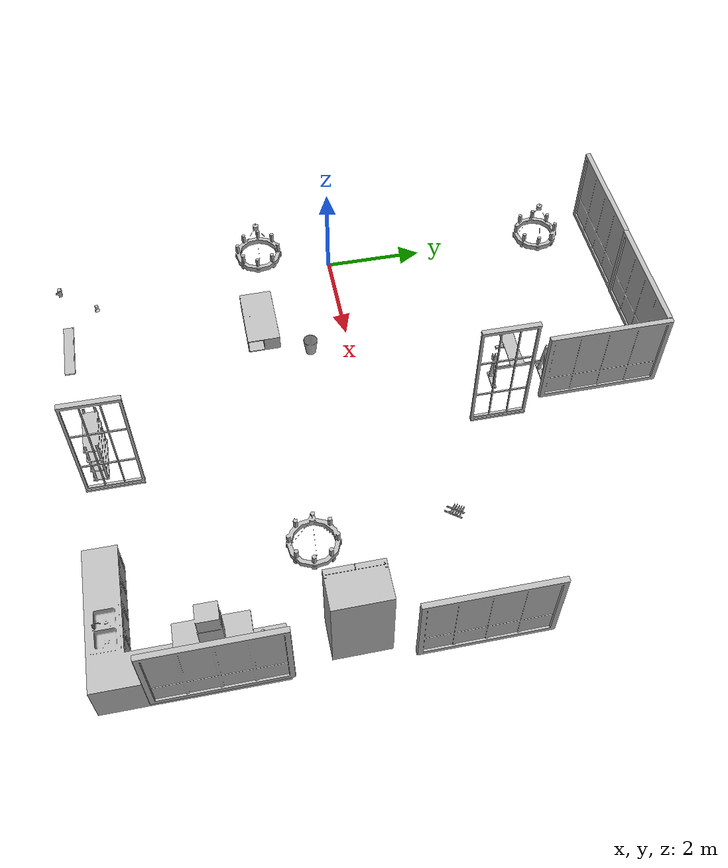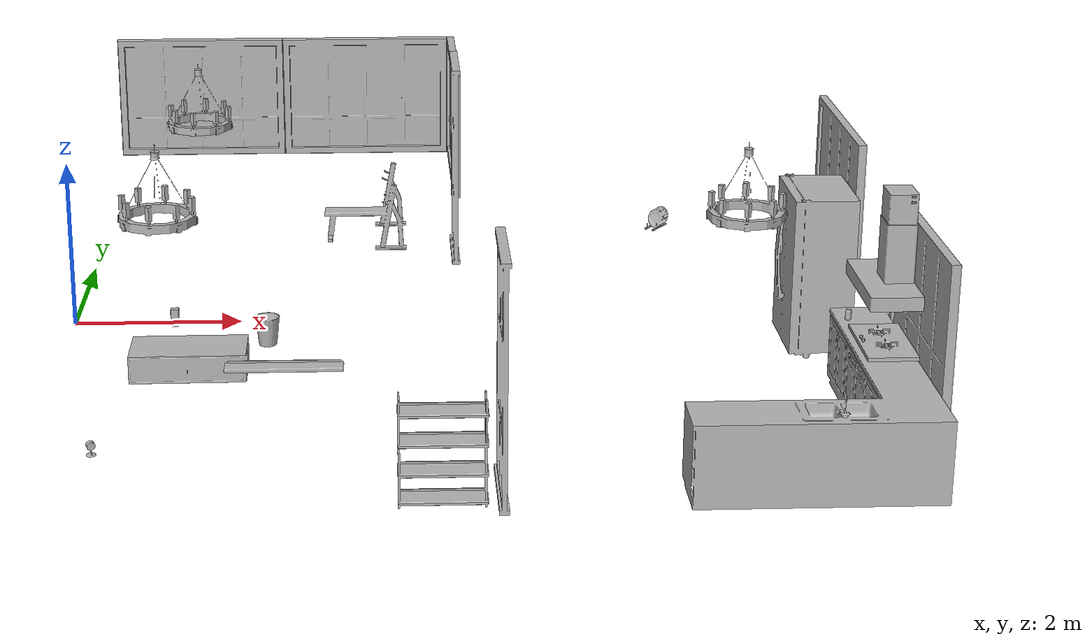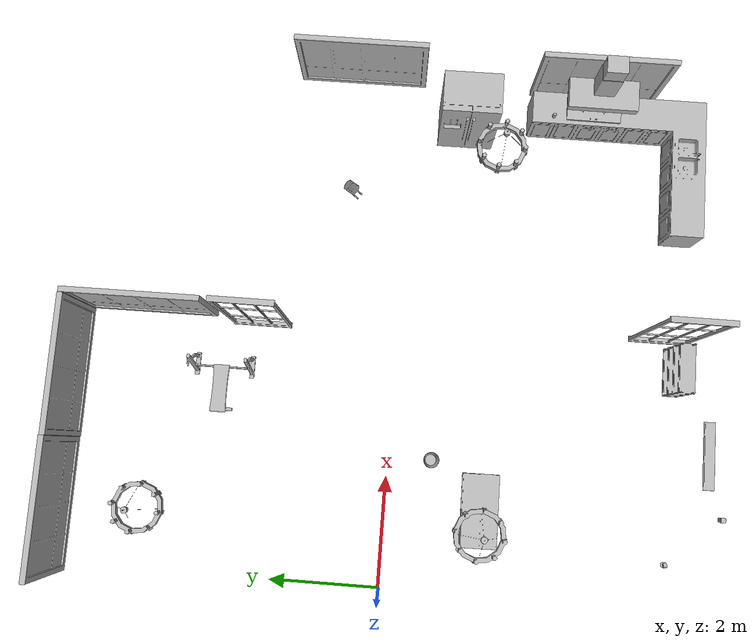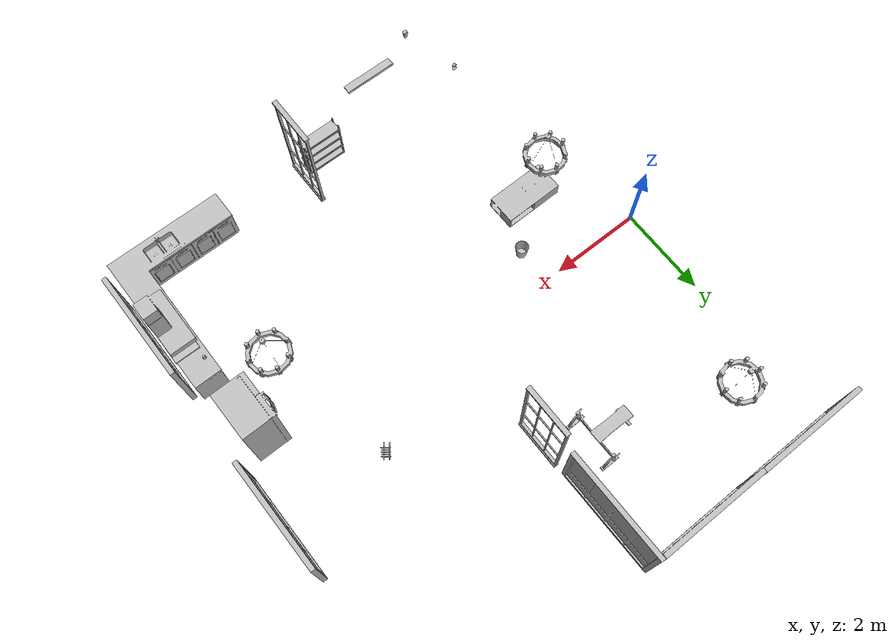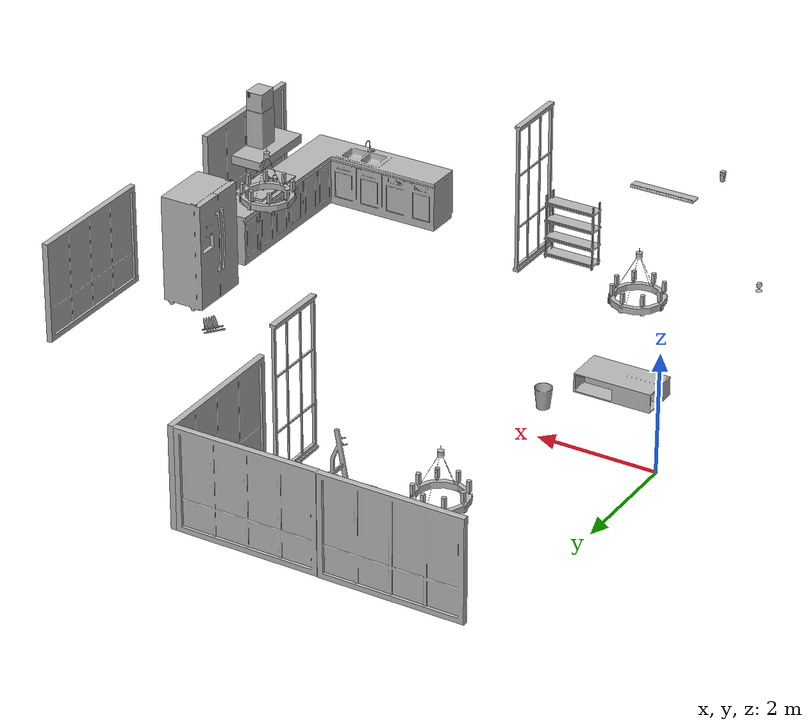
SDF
<sdf version="1.6">
 <world name="default">
  <model name="Board_01_001">
   <static>1</static>
   <link name="aws_robomaker_residential_Board_01::link">
    <inertial><mass>1</mass></inertial>
    <collision name="collision">
     <geometry>
      <mesh>
       <uri>model://aws_robomaker_residential_Board_01/meshes/aws_Board_01_collision.DAE</uri>
       <scale>1 1 1</scale>
      </mesh>
     </geometry>
    </collision>
    <visual name="visual">
     <geometry>
      <mesh><uri>model://aws_robomaker_residential_Board_01/meshes/aws_Board_01_visual.DAE</uri></mesh>
     </geometry>
     <meta><layer>2</layer></meta>
    </visual>
   </link>
   <static>1</static>
   <pose>2.77907 -5.3927 1.53817 0 -0 0</pose>
  </model>
  <model name="Chandelier_01_001">
   <static>1</static>
   <link name="aws_robomaker_residential_Chandelier_01::link">
    <inertial><mass>1</mass></inertial>
    <collision name="collision">
     <geometry>
      <mesh>
       <uri>model://aws_robomaker_residential_Chandelier_01/meshes/aws_Chandelier_01_collision.DAE</uri>
       <scale>1 1 1</scale>
      </mesh>
     </geometry>
    </collision>
    <visual name="visual">
     <geometry>
      <mesh><uri>model://aws_robomaker_residential_Chandelier_01/meshes/aws_Chandelier_01_visual.DAE</uri></mesh>
     </geometry>
     <meta><layer>2</layer></meta>
    </visual>
   </link>
   <static>1</static>
   <pose>1.22106 4.15574 1.295 0 -0 0</pose>
  </model>
  <model name="Chandelier_01_003">
   <static>1</static>
   <link name="aws_robomaker_residential_Chandelier_01::link">
    <inertial><mass>1</mass></inertial>
    <collision name="collision">
     <geometry>
      <mesh>
       <uri>model://aws_robomaker_residential_Chandelier_01/meshes/aws_Chandelier_01_collision.DAE</uri>
       <scale>1 1 1</scale>
      </mesh>
     </geometry>
    </collision>
    <visual name="visual">
     <geometry>
      <mesh><uri>model://aws_robomaker_residential_Chandelier_01/meshes/aws_Chandelier_01_visual.DAE</uri></mesh>
     </geometry>
     <meta><layer>2</layer></meta>
    </visual>
   </link>
   <static>1</static>
   <pose>7.82406 -1.59 1.751 0 -0 0</pose>
  </model>
  <model name="Chandelier_01_004">
   <static>1</static>
   <link name="aws_robomaker_residential_Chandelier_01::link">
    <inertial><mass>1</mass></inertial>
    <collision name="collision">
     <geometry>
      <mesh>
       <uri>model://aws_robomaker_residential_Chandelier_01/meshes/aws_Chandelier_01_collision.DAE</uri>
       <scale>1 1 1</scale>
      </mesh>
     </geometry>
    </collision>
    <visual name="visual">
     <geometry>
      <mesh><uri>model://aws_robomaker_residential_Chandelier_01/meshes/aws_Chandelier_01_visual.DAE</uri></mesh>
     </geometry>
     <meta><layer>2</layer></meta>
    </visual>
   </link>
   <static>1</static>
   <pose>1.22106 -1.59204 1.7873 0 -0 0</pose>
  </model>
  <model name="SecurityCamera_01_001">
   <static>1</static>
   <link name="aws_robomaker_residential_SecurityCamera_01::link">
    <inertial>
     <mass>1</mass>
     <inertia>
      <ixx>18.2222</ixx>
      <ixy>0</ixy>
      <ixz>0</ixz>
      <iyy>18.2222</iyy>
      <iyz>0</iyz>
      <izz>0.0018767</izz>
     </inertia>
    </inertial>
    <collision name="collision">
     <geometry>
      <mesh>
       <uri>model://aws_robomaker_residential_SecurityCamera_01/meshes/aws_SecurityCamera_01_collision.DAE</uri>
       <scale>1 1 1</scale>
      </mesh>
     </geometry>
    </collision>
    <visual name="visual">
     <geometry>
      <mesh>
       <uri>model://aws_robomaker_residential_SecurityCamera_01/meshes/aws_SecurityCamera_01_visual.DAE</uri>
      </mesh>
     </geometry>
     <meta><layer>2</layer></meta>
    </visual>
   </link>
   <pose>0.842134 -4.99629 0.495067 0 0 -2.84104</pose>
  </model>
  <model name="CoffeeTable_01_001">
   <static>1</static>
   <link name="aws_robomaker_residential_CoffeeTable_01::link">
    <inertial>
     <mass>21.7</mass>
     <inertia><ixx>0.81375</ixx><ixy>0</ixy><ixz>0</ixz><iyy>2.76675</iyy><iyz>0</iyz><izz>3.254</izz></inertia>
    </inertial>
    <collision name="collision">
     <geometry>
      <mesh>
       <uri>model://aws_robomaker_residential_CoffeeTable_01/meshes/aws_CoffeeTable_01_collision.DAE</uri>
       <scale>1 1 1</scale>
      </mesh>
     </geometry>
     <surface><contact><ode><max_vel>0.01</max_vel></ode></contact></surface>
    </collision>
    <visual name="visual">
     <geometry>
      <mesh><uri>model://aws_robomaker_residential_CoffeeTable_01/meshes/aws_CoffeeTable_01_visual.DAE</uri></mesh>
     </geometry>
     <meta><layer>1</layer></meta>
    </visual>
   </link>
   <static>1</static>
   <pose>1.5123 -1.73344 0.041983 0 -0 0.01</pose>
  </model>
  <model name="CookingBench_01_001">
   <link name="aws_robomaker_residential_CookingBench_01::link">
    <inertial><mass>1</mass></inertial>
    <collision name="collision">
     <geometry>
      <mesh>
       <uri>model://aws_robomaker_residential_CookingBench_01/meshes/aws_CookingBench_01_collision.DAE</uri>
       <scale>1 1 1</scale>
      </mesh>
     </geometry>
    </collision>
    <visual name="visual">
     <geometry>
      <mesh>
       <uri>model://aws_robomaker_residential_CookingBench_01/meshes/aws_CookingBench_01_visual.DAE</uri>
      </mesh>
     </geometry>
     <meta><layer>1</layer></meta>
    </visual>
   </link>
   <pose>9.03838 -3.35114 0.90361 0 -0 3.13713</pose>
   <static>1</static>
  </model>
  <model name="FitnessEquipment_01_001">
   <static>1</static>
   <link name="aws_robomaker_residential_FitnessEquipment_01::link">
    <inertial><mass>80</mass></inertial>
    <collision name="collision">
     <geometry>
      <mesh>
       <uri>model://aws_robomaker_residential_FitnessEquipment_01/meshes/aws_FitnessEquipment_01_collision.DAE</uri>
       <scale>1 1 1</scale>
      </mesh>
     </geometry>
    </collision>
    <visual name="visual">
     <geometry>
      <mesh>
       <uri>model://aws_robomaker_residential_FitnessEquipment_01/meshes/aws_FitnessEquipment_01_visual.DAE</uri>
      </mesh>
     </geometry>
     <meta><layer>1</layer></meta>
    </visual>
   </link>
   <static>1</static>
   <pose>3.48472 3.1691 0.003168 0 -0 0</pose>
  </model>
  <model name="FoldingDoor_02_001">
   <static>1</static>
   <link name="aws_robomaker_residential_FoldingDoor_02::link">
    <inertial><mass>1</mass></inertial>
    <collision name="collision">
     <geometry>
      <mesh>
       <uri>model://aws_robomaker_residential_FoldingDoor_02/meshes/aws_FoldingDoor_02_collision.DAE</uri>
       <scale>1 1 1</scale>
      </mesh>
     </geometry>
    </collision>
    <visual name="visual">
     <geometry>
      <mesh><uri>model://aws_robomaker_residential_FoldingDoor_02/meshes/aws_FoldingDoor_02_visual.DAE</uri></mesh>
     </geometry>
     <meta><layer>2</layer></meta>
    </visual>
   </link>
   <static>1</static>
   <pose>4.67423 2.46451 0 0 -0 3.14159</pose>
  </model>
  <model name="FoldingDoor_02_002">
   <static>1</static>
   <link name="aws_robomaker_residential_FoldingDoor_02::link">
    <inertial><mass>1</mass></inertial>
    <collision name="collision">
     <geometry>
      <mesh>
       <uri>model://aws_robomaker_residential_FoldingDoor_02/meshes/aws_FoldingDoor_02_collision.DAE</uri>
       <scale>1 1 1</scale>
      </mesh>
     </geometry>
    </collision>
    <visual name="visual">
     <geometry>
      <mesh><uri>model://aws_robomaker_residential_FoldingDoor_02/meshes/aws_FoldingDoor_02_visual.DAE</uri></mesh>
     </geometry>
     <meta><layer>2</layer></meta>
    </visual>
   </link>
   <static>1</static>
   <pose>4.8912 -4.84968 0 0 -0 0</pose>
  </model>
  <model name="KitchenCabinet_01_001">
   <static>1</static>
   <link name="aws_robomaker_residential_KitchenCabinet_01::link">
    <inertial><mass>1</mass></inertial>
    <collision name="collision">
     <geometry>
      <mesh>
       <uri>model://aws_robomaker_residential_KitchenCabinet_01/meshes/aws_KitchenCabinet_01_collision.DAE</uri>
       <scale>1 1 1</scale>
      </mesh>
     </geometry>
    </collision>
    <visual name="visual">
     <geometry>
      <mesh>
       <uri>model://aws_robomaker_residential_KitchenCabinet_01/meshes/aws_KitchenCabinet_01_visual.DAE</uri>
      </mesh>
     </geometry>
     <meta><layer>1</layer></meta>
    </visual>
   </link>
   <static>1</static>
   <pose>8.00201 -3.83651 0.012068 0 0 -3.14</pose>
  </model>
  <model name="LightC_01_001">
   <static>1</static>
   <link name="aws_robomaker_residential_LightC_01::link">
    <inertial><mass>1</mass></inertial>
    <collision name="collision">
     <geometry>
      <mesh>
       <uri>model://aws_robomaker_residential_LightC_01/meshes/aws_LightC_01_collision.DAE</uri>
       <scale>1 1 1</scale>
      </mesh>
     </geometry>
    </collision>
    <visual name="visual">
     <geometry>
      <mesh><uri>model://aws_robomaker_residential_LightC_01/meshes/aws_LightC_01_visual.DAE</uri></mesh>
     </geometry>
     <meta><layer>2</layer></meta>
    </visual>
   </link>
   <static>1</static>
   <pose>1.76957 -5.44437 2 0 -0 0</pose>
  </model>
  <model name="Rangehood_01_001">
   <static>1</static>
   <link name="aws_robomaker_residential_Rangehood_01::link">
    <inertial><mass>1</mass></inertial>
    <collision name="collision">
     <geometry>
      <mesh>
       <uri>model://aws_robomaker_residential_Rangehood_01/meshes/aws_Rangehood_01_collision.DAE</uri>
       <scale>1 1 1</scale>
      </mesh>
     </geometry>
    </collision>
    <visual name="visual">
     <geometry>
      <mesh><uri>model://aws_robomaker_residential_Rangehood_01/meshes/aws_Rangehood_01_visual.DAE</uri></mesh>
     </geometry>
     <meta><layer>2</layer></meta>
    </visual>
   </link>
   <static>1</static>
   <pose>9.01979 -3.36994 1.50761 0 -0 0</pose>
  </model>
  <model name="Refrigerator_01_001">
   <static>1</static>
   <link name="aws_robomaker_residential_Refrigerator_01::link">
    <inertial><mass>1</mass></inertial>
    <collision name="collision">
     <geometry>
      <mesh>
       <uri>model://aws_robomaker_residential_Refrigerator_01/meshes/aws_Refrigerator_01_collision.DAE</uri>
       <scale>1 1 1</scale>
      </mesh>
     </geometry>
    </collision>
    <visual name="visual">
     <geometry>
      <mesh>
       <uri>model://aws_robomaker_residential_Refrigerator_01/meshes/aws_Refrigerator_01_visual.DAE</uri>
      </mesh>
     </geometry>
     <meta><layer>1</layer></meta>
    </visual>
   </link>
   <static>1</static>
   <pose>8.70273 -1.03203 0 0 0 -1.5635</pose>
  </model>
  <model name="ShoeRack_01_001">
   <static>1</static>
   <link name="aws_robomaker_residential_ShoeRack_01::link">
    <inertial>
     <mass>6</mass>
     <inertia>
      <ixx>0.02</ixx>
      <ixy>0</ixy>
      <ixz>0</ixz>
      <iyy>0.04</iyy>
      <iyz>0</iyz>
      <ixx>0.02</ixx>
      <izz>1</izz>
     </inertia>
    </inertial>
    <collision name="collision">
     <geometry>
      <mesh>
       <uri>model://aws_robomaker_residential_ShoeRack_01/meshes/aws_ShoeRack_01_collision.DAE</uri>
       <scale>1 1 1</scale>
      </mesh>
     </geometry>
     <surface>
      <friction><ode><mu>0.2</mu><mu2>0.2</mu2></ode></friction>
      <contact><ode><kd>2500</kd></ode></contact>
     </surface>
    </collision>
    <visual name="visual">
     <geometry>
      <mesh><uri>model://aws_robomaker_residential_ShoeRack_01/meshes/aws_ShoeRack_01_visual.DAE</uri></mesh>
     </geometry>
     <meta><layer>1</layer></meta>
    </visual>
   </link>
   <pose>4.29798 -5.17357 0 0 -0 0</pose>
  </model>
  <model name="Tableware_01_001">
   <static>1</static>
   <link name="aws_robomaker_residential_Tableware_01::link">
    <inertial><mass>1</mass></inertial>
    <collision name="collision">
     <geometry>
      <mesh>
       <uri>model://aws_robomaker_residential_Tableware_01/meshes/aws_Tableware_01_collision.DAE</uri>
       <scale>1 1 1</scale>
      </mesh>
     </geometry>
    </collision>
    <visual name="visual">
     <geometry>
      <mesh><uri>model://aws_robomaker_residential_Tableware_01/meshes/aws_Tableware_01_visual.DAE</uri></mesh>
     </geometry>
     <meta><layer>1</layer></meta>
    </visual>
   </link>
   <pose>7.15317 0.982767 0.817812 -0.001238 -0.000976 1.02476</pose>
  </model>
  <model name="Trash_01_001">
   <static>1</static>
   <link name="aws_robomaker_residential_Trash_01::link">
    <inertial>
     <mass>0.1</mass>
     <inertia><ixy>0</ixy><ixz>0</ixz><iyz>0</iyz><ixx>0.05288</ixx><iyy>0.05288</iyy><izz>0.09132</izz></inertia>
    </inertial>
    <collision name="collision">
     <geometry>
      <mesh>
       <uri>model://aws_robomaker_residential_Trash_01/meshes/aws_Trash_01_collision.DAE</uri>
       <scale>1 1 1</scale>
      </mesh>
     </geometry>
    </collision>
    <visual name="visual">
     <geometry>
      <mesh><uri>model://aws_robomaker_residential_Trash_01/meshes/aws_Trash_01_visual.DAE</uri></mesh>
     </geometry>
     <meta><layer>1</layer></meta>
    </visual>
   </link>
   <pose>2.36015 -0.796238 0.011 0 -0 0</pose>
  </model>
  <model name="RoomWindow_01_003">
   <static>1</static>
   <link name="aws_robomaker_residential_RoomWindow_01::link">
    <inertial><mass>1</mass></inertial>
    <collision name="collision">
     <geometry>
      <mesh>
       <uri>model://aws_robomaker_residential_RoomWindow_01/meshes/aws_RoomWindow_01_collision.DAE</uri>
       <scale>1 1 1</scale>
      </mesh>
     </geometry>
    </collision>
    <visual name="visual">
     <geometry>
      <mesh><uri>model://aws_robomaker_residential_RoomWindow_01/meshes/aws_RoomWindow_01_visual.DAE</uri></mesh>
     </geometry>
     <meta><layer>2</layer></meta>
    </visual>
   </link>
   <static>1</static>
   <pose>9.42262 -3.37398 0.502739 0 0 -3.1361</pose>
  </model>
  <model name="RoomWindow_01_004">
   <static>1</static>
   <link name="aws_robomaker_residential_RoomWindow_01::link">
    <inertial><mass>1</mass></inertial>
    <collision name="collision">
     <geometry>
      <mesh>
       <uri>model://aws_robomaker_residential_RoomWindow_01/meshes/aws_RoomWindow_01_collision.DAE</uri>
       <scale>1 1 1</scale>
      </mesh>
     </geometry>
    </collision>
    <visual name="visual">
     <geometry>
      <mesh><uri>model://aws_robomaker_residential_RoomWindow_01/meshes/aws_RoomWindow_01_visual.DAE</uri></mesh>
     </geometry>
     <meta><layer>2</layer></meta>
    </visual>
   </link>
   <static>1</static>
   <pose>9.42256 0.96852 0.496581 0 0 -3.1361</pose>
  </model>
  <model name="RoomWindow_01_005">
   <static>1</static>
   <link name="aws_robomaker_residential_RoomWindow_01::link">
    <inertial><mass>1</mass></inertial>
    <collision name="collision">
     <geometry>
      <mesh>
       <uri>model://aws_robomaker_residential_RoomWindow_01/meshes/aws_RoomWindow_01_collision.DAE</uri>
       <scale>1 1 1</scale>
      </mesh>
     </geometry>
    </collision>
    <visual name="visual">
     <geometry>
      <mesh><uri>model://aws_robomaker_residential_RoomWindow_01/meshes/aws_RoomWindow_01_visual.DAE</uri></mesh>
     </geometry>
     <meta><layer>2</layer></meta>
    </visual>
   </link>
   <static>1</static>
   <pose>4.72232 4.47028 0.502739 0 0 -3.1361</pose>
  </model>
  <model name="RoomWindow_01_006">
   <static>1</static>
   <link name="aws_robomaker_residential_RoomWindow_01::link">
    <inertial><mass>1</mass></inertial>
    <collision name="collision">
     <geometry>
      <mesh>
       <uri>model://aws_robomaker_residential_RoomWindow_01/meshes/aws_RoomWindow_01_collision.DAE</uri>
       <scale>1 1 1</scale>
      </mesh>
     </geometry>
    </collision>
    <visual name="visual">
     <geometry>
      <mesh><uri>model://aws_robomaker_residential_RoomWindow_01/meshes/aws_RoomWindow_01_visual.DAE</uri></mesh>
     </geometry>
     <meta><layer>2</layer></meta>
    </visual>
   </link>
   <static>1</static>
   <pose>3.48852 5.60069 0.502739 0 0 -1.56627</pose>
  </model>
  <model name="RoomWindow_01_007">
   <static>1</static>
   <link name="aws_robomaker_residential_RoomWindow_01::link">
    <inertial><mass>1</mass></inertial>
    <collision name="collision">
     <geometry>
      <mesh>
       <uri>model://aws_robomaker_residential_RoomWindow_01/meshes/aws_RoomWindow_01_collision.DAE</uri>
       <scale>1 1 1</scale>
      </mesh>
     </geometry>
    </collision>
    <visual name="visual">
     <geometry>
      <mesh><uri>model://aws_robomaker_residential_RoomWindow_01/meshes/aws_RoomWindow_01_visual.DAE</uri></mesh>
     </geometry>
     <meta><layer>2</layer></meta>
    </visual>
   </link>
   <static>1</static>
   <pose>1.14095 5.60069 0.502739 0 0 -1.56627</pose>
  </model>
  <model name="coke_can">
   <link name="link">
    <inertial>
     <pose>0 0 0.06 0 -0 0</pose>
     <mass>0.39</mass>
     <inertia>
      <ixx>0.00055575</ixx>
      <ixy>0</ixy>
      <ixz>0</ixz>
      <iyy>0.00055575</iyy>
      <iyz>0</iyz>
      <izz>0.0001755</izz>
     </inertia>
    </inertial>
    <collision name="collision">
     <pose>0.003937 0.004724 -0.18 0 -0 0</pose>
     <geometry><mesh><uri>model://coke_can/meshes/coke_can.dae</uri></mesh></geometry>
     <surface>
      <friction><ode><mu>1</mu><mu2>1</mu2></ode></friction>
      <contact><ode><kp>1e+07</kp><kd>1</kd><min_depth>0.001</min_depth><max_vel>0.1</max_vel></ode></contact>
     </surface>
    </collision>
    <visual name="visual">
     <pose>0.003937 0.004724 -0.18 0 -0 0</pose>
     <geometry><mesh><uri>model://coke_can/meshes/coke_can.dae</uri></mesh></geometry>
    </visual>
   </link>
   <pose>8.8152 -2.61429 0.904499 0.000557 -0.008956 -0.000183</pose>
  </model>
 </world>
</sdf>
